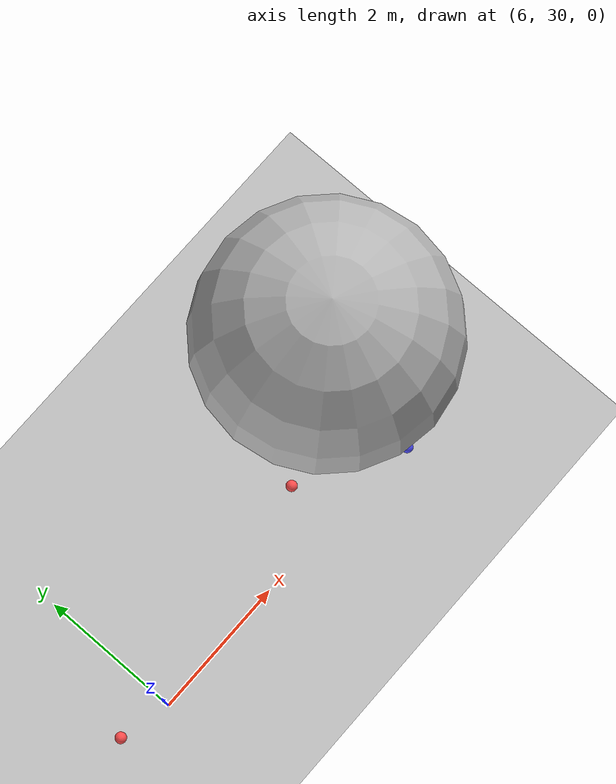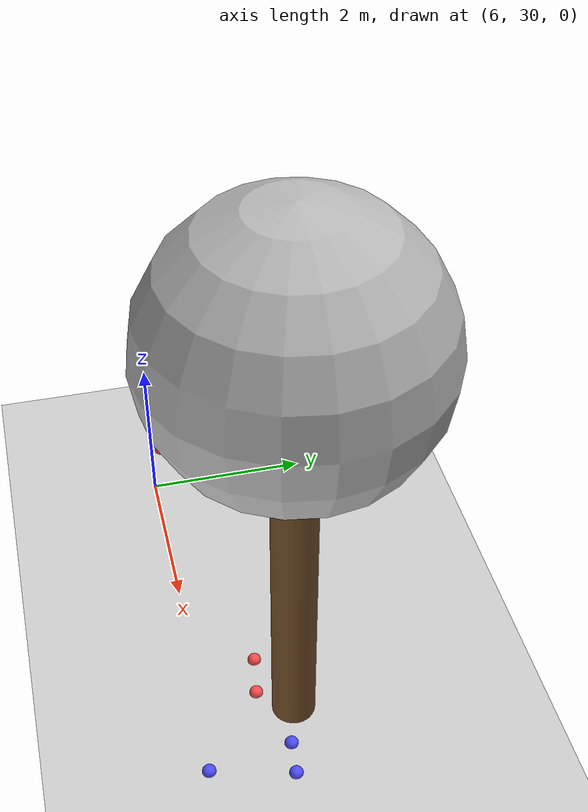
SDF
<sdf version="1.7">
 <world name="default">
  <model name="ground_plane">
   <static>1</static>
   <link name="link">
    <collision name="collision">
     <geometry><plane><normal>0 0 1</normal><size>100 100</size></plane></geometry>
     <surface>
      <contact><collide_bitmask>65535</collide_bitmask></contact>
      <friction><ode><mu>100</mu><mu2>50</mu2></ode></friction>
     </surface>
    </collision>
    <visual name="visual">
     <cast_shadows>0</cast_shadows>
     <geometry><plane><normal>0 0 1</normal><size>100 100</size></plane></geometry>
     <material>
      <script><uri>file://media/materials/scripts/gazebo.material</uri><name>Gazebo/Grey</name></script>
     </material>
    </visual>
   </link>
  </model>
  <model name="tree_simple_25">
   <static>1</static>
   <link name="link">
    <pose>0 0 0.1 0 -0 0</pose>
    <inertial>
     <mass>666</mass>
     <inertia>
      <ixx>0.0861167</ixx>
      <ixy>0</ixy>
      <ixz>0</ixz>
      <iyy>0.0861167</iyy>
      <iyz>0</iyz>
      <izz>0.0861167</izz>
     </inertia>
    </inertial>
    <collision name="collision_trunk">
     <pose>0 0 2 0 -0 0</pose>
     <geometry><cylinder><radius>0.25</radius><length>4</length></cylinder></geometry>
     <surface>
      <contact>
       <poissons_ratio>0.347</poissons_ratio>
       <elastic_modulus>8.8e+09</elastic_modulus>
       <ode><kp>100000</kp><kd>100</kd><max_vel>100</max_vel><min_depth>0.001</min_depth></ode>
      </contact>
      <friction>
       <torsional>
        <coefficient>1</coefficient>
        <use_patch_radius>0</use_patch_radius>
        <surface_radius>0.01</surface_radius>
       </torsional>
      </friction>
     </surface>
    </collision>
    <collision name="collision_treetop">
     <pose>0 0 5.2 0 -0 0</pose>
     <geometry><sphere><radius>1.5</radius></sphere></geometry>
     <surface>
      <contact>
       <poissons_ratio>0.347</poissons_ratio>
       <elastic_modulus>8.8e+09</elastic_modulus>
       <ode><kp>100000</kp><kd>100</kd><max_vel>100</max_vel><min_depth>0.001</min_depth></ode>
      </contact>
      <friction>
       <torsional>
        <coefficient>1</coefficient>
        <use_patch_radius>0</use_patch_radius>
        <surface_radius>0.01</surface_radius>
       </torsional>
      </friction>
     </surface>
    </collision>
    <visual name="trunk">
     <pose>0 0 2 0 -0 0</pose>
     <geometry><cylinder><radius>0.25</radius><length>4</length></cylinder></geometry>
     <material>
      <script>
       <uri>model://tree_simple/scripts</uri>
       <uri>model://tree_simple/materials/textures</uri>
       <name>TreeSimple/Trunk</name>
      </script>
     </material>
    </visual>
    <visual name="treetop">
     <pose>0 0 5.2 0 -0 0</pose>
     <geometry><sphere><radius>1.5</radius></sphere></geometry>
     <material>
      <script>
       <uri>model://tree_simple/scripts</uri>
       <uri>model://tree_simple/materials/textures</uri>
       <name>TreeSimple/Treetop</name>
      </script>
     </material>
    </visual>
   </link>
   <pose>10 31 -0.1 0 -0 0</pose>
  </model>
  <model name="seed_red_101">
   <link name="link">
    <inertial>
     <mass>1</mass>
     <inertia><ixx>0.1</ixx><ixy>0</ixy><ixz>0</ixz><iyy>0.1</iyy><iyz>0</iyz><izz>0.1</izz></inertia>
    </inertial>
    <visual name="visual">
     <geometry><sphere><radius>0.08</radius></sphere></geometry>
     <material>
      <script><name>Gazebo/Grey</name><uri>file://media/materials/scripts/gazebo.material</uri></script>
      <shader type="pixel"><normal_map>__default__</normal_map></shader>
      <ambient>1 0.3 0.3 1</ambient>
      <diffuse>0.7 0.7 0.7 1</diffuse>
      <specular>0.01 0.01 0.01 1</specular>
      <emissive>0 0 0 1</emissive>
     </material>
    </visual>
    <collision name="collision">
     <geometry><sphere><radius>0.0005</radius></sphere></geometry>
     <surface>
      <friction>
       <ode><mu>1</mu><mu2>1</mu2><fdir1>0 0 0</fdir1><slip1>0</slip1><slip2>0</slip2></ode>
       <torsional>
        <coefficient>1</coefficient>
        <patch_radius>0</patch_radius>
        <surface_radius>0</surface_radius>
        <use_patch_radius>1</use_patch_radius>
        <ode><slip>0</slip></ode>
       </torsional>
      </friction>
      <bounce><restitution_coefficient>0</restitution_coefficient><threshold>1e+06</threshold></bounce>
      <contact>
       <collide_without_contact>0</collide_without_contact>
       <collide_without_contact_bitmask>1</collide_without_contact_bitmask>
       <collide_bitmask>1</collide_bitmask>
       <ode>
        <soft_cfm>0</soft_cfm>
        <soft_erp>0.2</soft_erp>
        <kp>1e+13</kp>
        <kd>1</kd>
        <max_vel>0.01</max_vel>
        <min_depth>0</min_depth>
       </ode>
       <bullet>
        <split_impulse>1</split_impulse>
        <split_impulse_penetration_threshold>-0.01</split_impulse_penetration_threshold>
        <soft_cfm>0</soft_cfm>
        <soft_erp>0.2</soft_erp>
        <kp>1e+13</kp>
        <kd>1</kd>
       </bullet>
      </contact>
     </surface>
    </collision>
   </link>
   <static>0</static>
   <pose>9.71855 30.6177 0.0005 0 -0 0</pose>
  </model>
  <model name="seed_red_102">
   <link name="link">
    <inertial>
     <mass>1</mass>
     <inertia><ixx>0.1</ixx><ixy>0</ixy><ixz>0</ixz><iyy>0.1</iyy><iyz>0</iyz><izz>0.1</izz></inertia>
    </inertial>
    <visual name="visual">
     <geometry><sphere><radius>0.08</radius></sphere></geometry>
     <material>
      <script><name>Gazebo/Grey</name><uri>file://media/materials/scripts/gazebo.material</uri></script>
      <shader type="pixel"><normal_map>__default__</normal_map></shader>
      <ambient>1 0.3 0.3 1</ambient>
      <diffuse>0.7 0.7 0.7 1</diffuse>
      <specular>0.01 0.01 0.01 1</specular>
      <emissive>0 0 0 1</emissive>
     </material>
    </visual>
    <collision name="collision">
     <geometry><sphere><radius>0.0005</radius></sphere></geometry>
     <surface>
      <friction>
       <ode><mu>1</mu><mu2>1</mu2><fdir1>0 0 0</fdir1><slip1>0</slip1><slip2>0</slip2></ode>
       <torsional>
        <coefficient>1</coefficient>
        <patch_radius>0</patch_radius>
        <surface_radius>0</surface_radius>
        <use_patch_radius>1</use_patch_radius>
        <ode><slip>0</slip></ode>
       </torsional>
      </friction>
      <bounce><restitution_coefficient>0</restitution_coefficient><threshold>1e+06</threshold></bounce>
      <contact>
       <collide_without_contact>0</collide_without_contact>
       <collide_without_contact_bitmask>1</collide_without_contact_bitmask>
       <collide_bitmask>1</collide_bitmask>
       <ode>
        <soft_cfm>0</soft_cfm>
        <soft_erp>0.2</soft_erp>
        <kp>1e+13</kp>
        <kd>1</kd>
        <max_vel>0.01</max_vel>
        <min_depth>0</min_depth>
       </ode>
       <bullet>
        <split_impulse>1</split_impulse>
        <split_impulse_penetration_threshold>-0.01</split_impulse_penetration_threshold>
        <soft_cfm>0</soft_cfm>
        <soft_erp>0.2</soft_erp>
        <kp>1e+13</kp>
        <kd>1</kd>
       </bullet>
      </contact>
     </surface>
    </collision>
   </link>
   <static>0</static>
   <pose>9.48158 31.0662 0.0005 0 -0 0</pose>
  </model>
  <model name="seed_red_104">
   <link name="link">
    <inertial>
     <mass>1</mass>
     <inertia><ixx>0.1</ixx><ixy>0</ixy><ixz>0</ixz><iyy>0.1</iyy><iyz>0</iyz><izz>0.1</izz></inertia>
    </inertial>
    <visual name="visual">
     <geometry><sphere><radius>0.08</radius></sphere></geometry>
     <material>
      <script><name>Gazebo/Grey</name><uri>file://media/materials/scripts/gazebo.material</uri></script>
      <shader type="pixel"><normal_map>__default__</normal_map></shader>
      <ambient>1 0.3 0.3 1</ambient>
      <diffuse>0.7 0.7 0.7 1</diffuse>
      <specular>0.01 0.01 0.01 1</specular>
      <emissive>0 0 0 1</emissive>
     </material>
    </visual>
    <collision name="collision">
     <geometry><sphere><radius>0.0005</radius></sphere></geometry>
     <surface>
      <friction>
       <ode><mu>1</mu><mu2>1</mu2><fdir1>0 0 0</fdir1><slip1>0</slip1><slip2>0</slip2></ode>
       <torsional>
        <coefficient>1</coefficient>
        <patch_radius>0</patch_radius>
        <surface_radius>0</surface_radius>
        <use_patch_radius>1</use_patch_radius>
        <ode><slip>0</slip></ode>
       </torsional>
      </friction>
      <bounce><restitution_coefficient>0</restitution_coefficient><threshold>1e+06</threshold></bounce>
      <contact>
       <collide_without_contact>0</collide_without_contact>
       <collide_without_contact_bitmask>1</collide_without_contact_bitmask>
       <collide_bitmask>1</collide_bitmask>
       <ode>
        <soft_cfm>0</soft_cfm>
        <soft_erp>0.2</soft_erp>
        <kp>1e+13</kp>
        <kd>1</kd>
        <max_vel>0.01</max_vel>
        <min_depth>0</min_depth>
       </ode>
       <bullet>
        <split_impulse>1</split_impulse>
        <split_impulse_penetration_threshold>-0.01</split_impulse_penetration_threshold>
        <soft_cfm>0</soft_cfm>
        <soft_erp>0.2</soft_erp>
        <kp>1e+13</kp>
        <kd>1</kd>
       </bullet>
      </contact>
     </surface>
    </collision>
   </link>
   <static>0</static>
   <pose>9.24245 30.6953 0.0005 0 -0 0</pose>
  </model>
  <model name="seed_red_123">
   <link name="link">
    <inertial>
     <mass>1</mass>
     <inertia><ixx>0.1</ixx><ixy>0</ixy><ixz>0</ixz><iyy>0.1</iyy><iyz>0</iyz><izz>0.1</izz></inertia>
    </inertial>
    <visual name="visual">
     <geometry><sphere><radius>0.08</radius></sphere></geometry>
     <material>
      <script><name>Gazebo/Grey</name><uri>file://media/materials/scripts/gazebo.material</uri></script>
      <shader type="pixel"><normal_map>__default__</normal_map></shader>
      <ambient>1 0.3 0.3 1</ambient>
      <diffuse>0.7 0.7 0.7 1</diffuse>
      <specular>0.01 0.01 0.01 1</specular>
      <emissive>0 0 0 1</emissive>
     </material>
    </visual>
    <collision name="collision">
     <geometry><sphere><radius>0.0005</radius></sphere></geometry>
     <surface>
      <friction>
       <ode><mu>1</mu><mu2>1</mu2><fdir1>0 0 0</fdir1><slip1>0</slip1><slip2>0</slip2></ode>
       <torsional>
        <coefficient>1</coefficient>
        <patch_radius>0</patch_radius>
        <surface_radius>0</surface_radius>
        <use_patch_radius>1</use_patch_radius>
        <ode><slip>0</slip></ode>
       </torsional>
      </friction>
      <bounce><restitution_coefficient>0</restitution_coefficient><threshold>1e+06</threshold></bounce>
      <contact>
       <collide_without_contact>0</collide_without_contact>
       <collide_without_contact_bitmask>1</collide_without_contact_bitmask>
       <collide_bitmask>1</collide_bitmask>
       <ode>
        <soft_cfm>0</soft_cfm>
        <soft_erp>0.2</soft_erp>
        <kp>1e+13</kp>
        <kd>1</kd>
        <max_vel>0.01</max_vel>
        <min_depth>0</min_depth>
       </ode>
       <bullet>
        <split_impulse>1</split_impulse>
        <split_impulse_penetration_threshold>-0.01</split_impulse_penetration_threshold>
        <soft_cfm>0</soft_cfm>
        <soft_erp>0.2</soft_erp>
        <kp>1e+13</kp>
        <kd>1</kd>
       </bullet>
      </contact>
     </surface>
    </collision>
   </link>
   <static>0</static>
   <pose>5.28562 30.1896 0.0005 0 -0 0</pose>
  </model>
  <model name="seed_blue_58">
   <link name="link">
    <inertial>
     <mass>1</mass>
     <inertia><ixx>0.1</ixx><ixy>0</ixy><ixz>0</ixz><iyy>0.1</iyy><iyz>0</iyz><izz>0.1</izz></inertia>
    </inertial>
    <visual name="visual">
     <geometry><sphere><radius>0.08</radius></sphere></geometry>
     <material>
      <script><name>Gazebo/Grey</name><uri>file://media/materials/scripts/gazebo.material</uri></script>
      <shader type="pixel"><normal_map>__default__</normal_map></shader>
      <ambient>0.3 0.3 1 1</ambient>
      <diffuse>0.7 0.7 0.7 1</diffuse>
      <specular>0.01 0.01 0.01 1</specular>
      <emissive>0 0 0 1</emissive>
     </material>
    </visual>
    <collision name="collision">
     <geometry><sphere><radius>0.0005</radius></sphere></geometry>
     <surface>
      <friction>
       <ode><mu>1</mu><mu2>1</mu2><fdir1>0 0 0</fdir1><slip1>0</slip1><slip2>0</slip2></ode>
       <torsional>
        <coefficient>1</coefficient>
        <patch_radius>0</patch_radius>
        <surface_radius>0</surface_radius>
        <use_patch_radius>1</use_patch_radius>
        <ode><slip>0</slip></ode>
       </torsional>
      </friction>
      <bounce><restitution_coefficient>0</restitution_coefficient><threshold>1e+06</threshold></bounce>
      <contact>
       <collide_without_contact>0</collide_without_contact>
       <collide_without_contact_bitmask>1</collide_without_contact_bitmask>
       <collide_bitmask>1</collide_bitmask>
       <ode>
        <soft_cfm>0</soft_cfm>
        <soft_erp>0.2</soft_erp>
        <kp>1e+13</kp>
        <kd>1</kd>
        <max_vel>0.01</max_vel>
        <min_depth>0</min_depth>
       </ode>
       <bullet>
        <split_impulse>1</split_impulse>
        <split_impulse_penetration_threshold>-0.01</split_impulse_penetration_threshold>
        <soft_cfm>0</soft_cfm>
        <soft_erp>0.2</soft_erp>
        <kp>1e+13</kp>
        <kd>1</kd>
       </bullet>
      </contact>
     </surface>
    </collision>
   </link>
   <static>0</static>
   <pose>10.6527 29.8802 0.0005 0 -0 0</pose>
  </model>
  <model name="seed_blue_60">
   <link name="link">
    <inertial>
     <mass>1</mass>
     <inertia><ixx>0.1</ixx><ixy>0</ixy><ixz>0</ixz><iyy>0.1</iyy><iyz>0</iyz><izz>0.1</izz></inertia>
    </inertial>
    <visual name="visual">
     <geometry><sphere><radius>0.08</radius></sphere></geometry>
     <material>
      <script><name>Gazebo/Grey</name><uri>file://media/materials/scripts/gazebo.material</uri></script>
      <shader type="pixel"><normal_map>__default__</normal_map></shader>
      <ambient>0.3 0.3 1 1</ambient>
      <diffuse>0.7 0.7 0.7 1</diffuse>
      <specular>0.01 0.01 0.01 1</specular>
      <emissive>0 0 0 1</emissive>
     </material>
    </visual>
    <collision name="collision">
     <geometry><sphere><radius>0.0005</radius></sphere></geometry>
     <surface>
      <friction>
       <ode><mu>1</mu><mu2>1</mu2><fdir1>0 0 0</fdir1><slip1>0</slip1><slip2>0</slip2></ode>
       <torsional>
        <coefficient>1</coefficient>
        <patch_radius>0</patch_radius>
        <surface_radius>0</surface_radius>
        <use_patch_radius>1</use_patch_radius>
        <ode><slip>0</slip></ode>
       </torsional>
      </friction>
      <bounce><restitution_coefficient>0</restitution_coefficient><threshold>1e+06</threshold></bounce>
      <contact>
       <collide_without_contact>0</collide_without_contact>
       <collide_without_contact_bitmask>1</collide_without_contact_bitmask>
       <collide_bitmask>1</collide_bitmask>
       <ode>
        <soft_cfm>0</soft_cfm>
        <soft_erp>0.2</soft_erp>
        <kp>1e+13</kp>
        <kd>1</kd>
        <max_vel>0.01</max_vel>
        <min_depth>0</min_depth>
       </ode>
       <bullet>
        <split_impulse>1</split_impulse>
        <split_impulse_penetration_threshold>-0.01</split_impulse_penetration_threshold>
        <soft_cfm>0</soft_cfm>
        <soft_erp>0.2</soft_erp>
        <kp>1e+13</kp>
        <kd>1</kd>
       </bullet>
      </contact>
     </surface>
    </collision>
   </link>
   <static>0</static>
   <pose>10.8923 30.8206 0.0005 0 -0 0</pose>
  </model>
  <model name="seed_blue_64">
   <link name="link">
    <inertial>
     <mass>1</mass>
     <inertia><ixx>0.1</ixx><ixy>0</ixy><ixz>0</ixz><iyy>0.1</iyy><iyz>0</iyz><izz>0.1</izz></inertia>
    </inertial>
    <visual name="visual">
     <geometry><sphere><radius>0.08</radius></sphere></geometry>
     <material>
      <script><name>Gazebo/Grey</name><uri>file://media/materials/scripts/gazebo.material</uri></script>
      <shader type="pixel"><normal_map>__default__</normal_map></shader>
      <ambient>0.3 0.3 1 1</ambient>
      <diffuse>0.7 0.7 0.7 1</diffuse>
      <specular>0.01 0.01 0.01 1</specular>
      <emissive>0 0 0 1</emissive>
     </material>
    </visual>
    <collision name="collision">
     <geometry><sphere><radius>0.0005</radius></sphere></geometry>
     <surface>
      <friction>
       <ode><mu>1</mu><mu2>1</mu2><fdir1>0 0 0</fdir1><slip1>0</slip1><slip2>0</slip2></ode>
       <torsional>
        <coefficient>1</coefficient>
        <patch_radius>0</patch_radius>
        <surface_radius>0</surface_radius>
        <use_patch_radius>1</use_patch_radius>
        <ode><slip>0</slip></ode>
       </torsional>
      </friction>
      <bounce><restitution_coefficient>0</restitution_coefficient><threshold>1e+06</threshold></bounce>
      <contact>
       <collide_without_contact>0</collide_without_contact>
       <collide_without_contact_bitmask>1</collide_without_contact_bitmask>
       <collide_bitmask>1</collide_bitmask>
       <ode>
        <soft_cfm>0</soft_cfm>
        <soft_erp>0.2</soft_erp>
        <kp>1e+13</kp>
        <kd>1</kd>
        <max_vel>0.01</max_vel>
        <min_depth>0</min_depth>
       </ode>
       <bullet>
        <split_impulse>1</split_impulse>
        <split_impulse_penetration_threshold>-0.01</split_impulse_penetration_threshold>
        <soft_cfm>0</soft_cfm>
        <soft_erp>0.2</soft_erp>
        <kp>1e+13</kp>
        <kd>1</kd>
       </bullet>
      </contact>
     </surface>
    </collision>
   </link>
   <static>0</static>
   <pose>10.4988 30.8586 0.0005 0 -0 0</pose>
  </model>
 </world>
</sdf>
